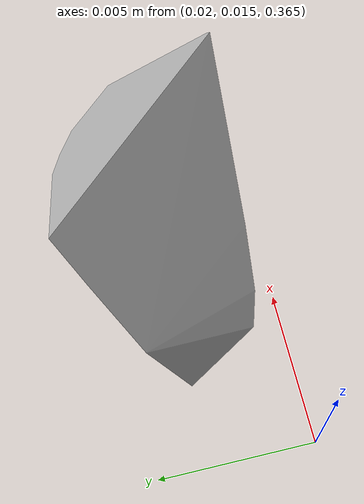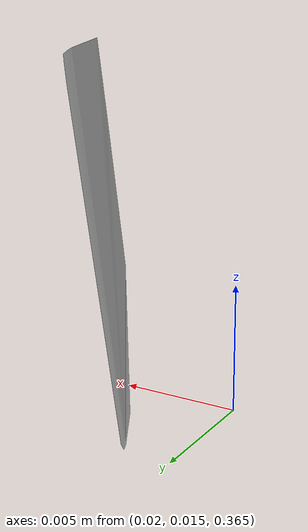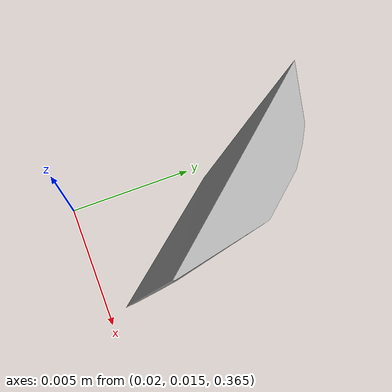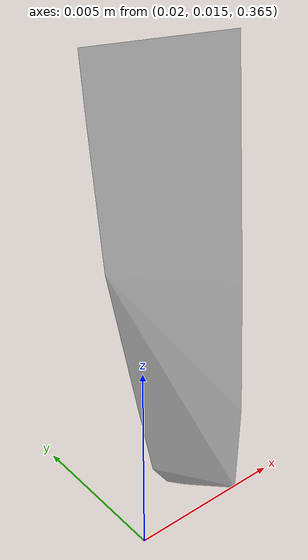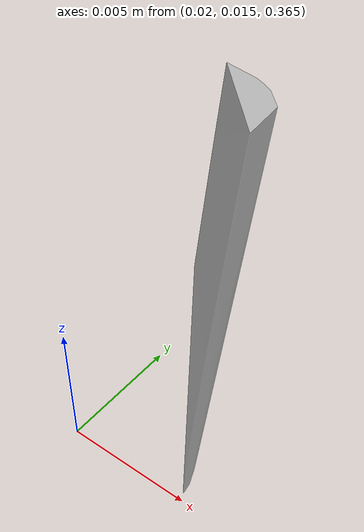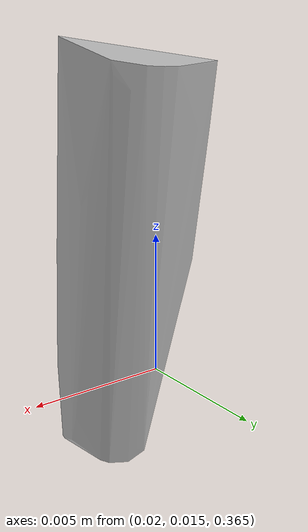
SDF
<?xml version="1.0"?>
<sdf version="1.7">
  <model name="vascular_partexport016">
    <link name="vascular_partexport016_body">
      <visual name="vascular_partexport016_visual">
        <geometry>
          <mesh>
            <uri>vascular_partexport016.obj</uri>
          </mesh>
        </geometry>
      </visual>
      <collision name="vascular_partexport016_collision">
        <geometry>
          <mesh>
            <uri>vascular_partexport016.obj</uri>
          </mesh>
        </geometry>
      </collision>
    </link>
    <frame name="vascular_partexport016_center">
      <pose relative_to="vascular_partexport016_body">0 0 0 0 0 0</pose>
    </frame>
  </model>
</sdf>
